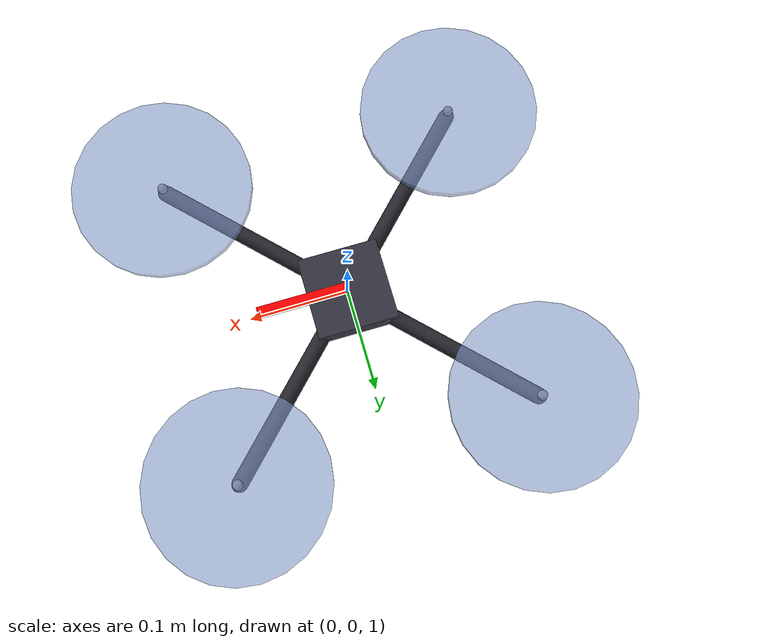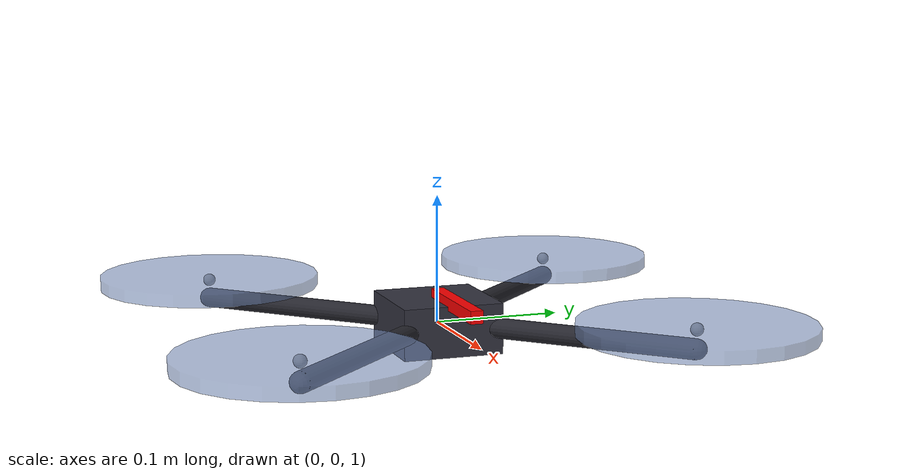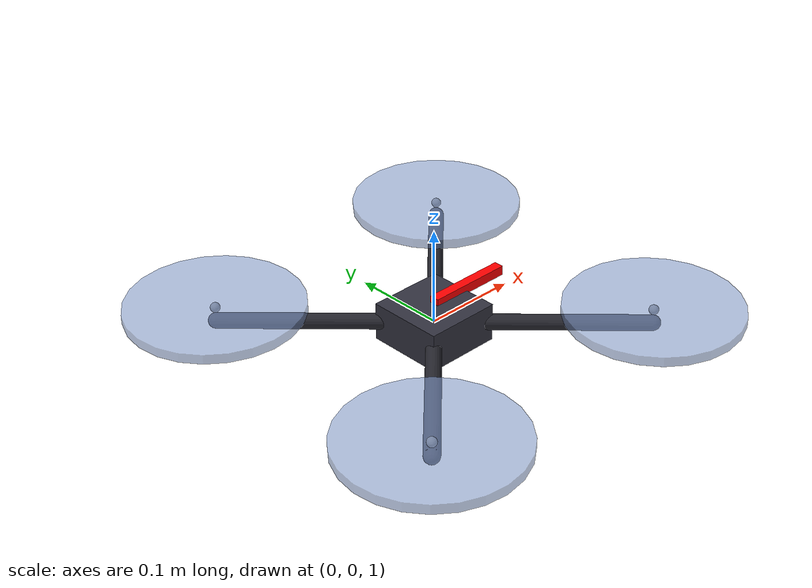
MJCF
<mujoco model="quadrotor">
  <default>
    <default class="drone_body"><geom rgba="0.20 0.20 0.25 1"/></default>
    <default class="drone_arm">
      <geom type="capsule" size="0.008" rgba="0.15 0.15 0.18 1"/>
    </default>
    <default class="drone_rotor">
      <geom type="cylinder" size="0.09 0.005" rgba="0.5 0.6 0.8 0.6"
            contype="0" conaffinity="0"/>
    </default>
  </default>

  <worldbody>
    <body name="drone" pos="0 0 1.0">
      <freejoint name="drone_root"/>
      <inertial pos="0 0 0" mass="1.25"
                diaginertia="0.0025 0.0025 0.0045"/>

      <geom class="drone_body" type="box" size="0.04 0.04 0.02"/>
      <!-- red nose marker: points along +x -->
      <geom type="box" size="0.045 0.005 0.005" pos="0.045 0 0.022" rgba="1 0 0 1"/>

      <geom class="drone_arm" fromto="0 0 0  +0.1500 +0.1500 0"/>
      <geom class="drone_arm" fromto="0 0 0  +0.1500 -0.1500 0"/>
      <geom class="drone_arm" fromto="0 0 0  -0.1500 -0.1500 0"/>
      <geom class="drone_arm" fromto="0 0 0  -0.1500 +0.1500 0"/>

      <geom class="drone_rotor" pos="+0.1500 +0.1500 0.015"/>
      <site name="rotor_fr" pos="+0.1500 +0.1500 0.015"/>
      <geom class="drone_rotor" pos="+0.1500 -0.1500 0.015"/>
      <site name="rotor_br" pos="+0.1500 -0.1500 0.015"/>
      <geom class="drone_rotor" pos="-0.1500 -0.1500 0.015"/>
      <site name="rotor_bl" pos="-0.1500 -0.1500 0.015"/>
      <geom class="drone_rotor" pos="-0.1500 +0.1500 0.015"/>
      <site name="rotor_fl" pos="-0.1500 +0.1500 0.015"/>

      <site name="imu" pos="0 0 0" size="0.005" rgba="0 1 0 0.5"/>

      <camera name="onboard" pos="0.05 0 0.01" xyaxes="0 -1 0  0 0 1" fovy="90"/>
      <camera name="chase"   pos="-0.4 0 0.15" xyaxes="0 -1 0  0 0 1" fovy="60"/>
      <camera name="track"   pos="-3.0 -2.2 1.8" mode="trackcom" fovy="55"
              xyaxes="0.591 -0.807 0  0.351 0.257 0.900"/>
    </body>
  </worldbody>

  <actuator>
    <motor name="thrust_fr" site="rotor_fr" gear="0 0 1 0 0 +0.01600" ctrlrange="0 7.0"/>
    <motor name="thrust_br" site="rotor_br" gear="0 0 1 0 0 -0.01600" ctrlrange="0 7.0"/>
    <motor name="thrust_bl" site="rotor_bl" gear="0 0 1 0 0 +0.01600" ctrlrange="0 7.0"/>
    <motor name="thrust_fl" site="rotor_fl" gear="0 0 1 0 0 -0.01600" ctrlrange="0 7.0"/>
  </actuator>

  <sensor>
    <gyro          name="gyro"        site="imu"/>
    <accelerometer name="accel"       site="imu"/>
    <framequat     name="orientation" objtype="site" objname="imu"/>
    <framepos      name="position"    objtype="site" objname="imu"/>
    <framelinvel   name="linvel"      objtype="site" objname="imu"/>
  </sensor>
</mujoco>
